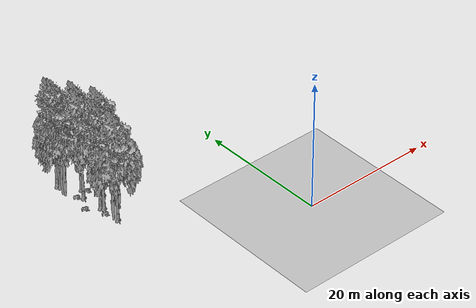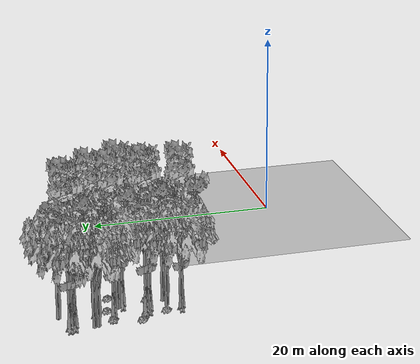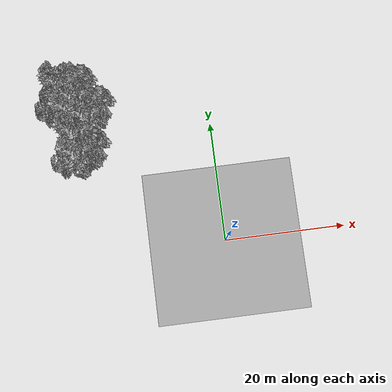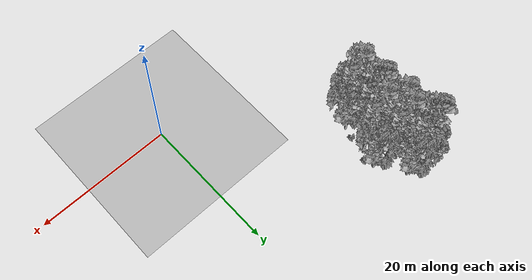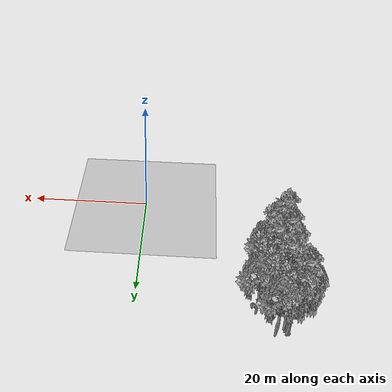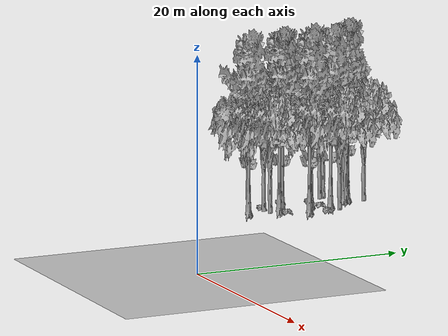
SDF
<sdf version="1.7">
 <world name="default">
  <model name="ground_plane">
   <static>1</static>
   <link name="link">
    <collision name="collision">
     <pose>-50 0 0 0 -0 0</pose>
     <geometry><plane><normal>0 0 1</normal><size>80 80</size></plane></geometry>
     <surface><contact><ode><min_depth>0.01</min_depth><max_vel>0</max_vel></ode></contact></surface>
    </collision>
    <visual name="grass">
     <cast_shadows>0</cast_shadows>
     <geometry>
      <mesh>
       <scale>0.46714285714285714 0.46714285714285714 0.1</scale>
       <uri>file://grass_plane/meshes/grass_plane.dae</uri>
      </mesh>
     </geometry>
    </visual>
   </link>
  </model>
  <model name="Tree 34">
   <static>1</static>
   <pose>-18.484954712036057 23.357658262304867 0 1.57079 -0 0</pose>
   <link name="link">
    <collision name="collision">
     <geometry><mesh><scale>3.5 5 3.5</scale><uri>model://tree_2/meshes/tree_2.obj</uri></mesh></geometry>
    </collision>
    <visual name="visual">
     <geometry><mesh><scale>3.5 5 3.5</scale><uri>model://tree_2/meshes/tree_2.obj</uri></mesh></geometry>
    </visual>
   </link>
  </model>
  <model name="Tree 43">
   <static>1</static>
   <pose>-19.904946813310186 16.7215869745757 0 1.57079 -0 0</pose>
   <link name="link">
    <collision name="collision">
     <geometry><mesh><scale>3.5 5 3.5</scale><uri>model://tree_2/meshes/tree_2.obj</uri></mesh></geometry>
    </collision>
    <visual name="visual">
     <geometry><mesh><scale>3.5 5 3.5</scale><uri>model://tree_2/meshes/tree_2.obj</uri></mesh></geometry>
    </visual>
   </link>
  </model>
  <model name="Tree 57">
   <static>1</static>
   <pose>-19.44848914499519 20.676733369066497 0 1.57079 -0 0</pose>
   <link name="link">
    <collision name="collision">
     <geometry><mesh><scale>3.5 5 3.5</scale><uri>model://tree_9/meshes/tree_9.obj</uri></mesh></geometry>
    </collision>
    <visual name="visual">
     <geometry><mesh><scale>3.5 5 3.5</scale><uri>model://tree_9/meshes/tree_9.obj</uri></mesh></geometry>
    </visual>
   </link>
  </model>
  <model name="Tree 71">
   <static>1</static>
   <pose>-22.917101464437437 26.415208543538 0 1.57079 -0 0</pose>
   <link name="link">
    <collision name="collision">
     <geometry><mesh><scale>3.5 5 3.5</scale><uri>model://tree_9/meshes/tree_9.obj</uri></mesh></geometry>
    </collision>
    <visual name="visual">
     <geometry><mesh><scale>3.5 5 3.5</scale><uri>model://tree_9/meshes/tree_9.obj</uri></mesh></geometry>
    </visual>
   </link>
  </model>
  <model name="Tree 88">
   <static>1</static>
   <pose>-21.916306055899604 15.358803301679472 0 1.57079 -0 0</pose>
   <link name="link">
    <collision name="collision">
     <geometry><mesh><scale>3.5 5 3.5</scale><uri>model://tree_2/meshes/tree_2.obj</uri></mesh></geometry>
    </collision>
    <visual name="visual">
     <geometry><mesh><scale>3.5 5 3.5</scale><uri>model://tree_2/meshes/tree_2.obj</uri></mesh></geometry>
    </visual>
   </link>
  </model>
  <model name="Tree 136">
   <static>1</static>
   <pose>-21.04842977844104 27.199263413137103 0 1.57079 -0 0</pose>
   <link name="link">
    <collision name="collision">
     <geometry><mesh><scale>3.5 5 3.5</scale><uri>model://tree_2/meshes/tree_2.obj</uri></mesh></geometry>
    </collision>
    <visual name="visual">
     <geometry><mesh><scale>3.5 5 3.5</scale><uri>model://tree_2/meshes/tree_2.obj</uri></mesh></geometry>
    </visual>
   </link>
  </model>
  <model name="Tree 141">
   <static>1</static>
   <pose>-21.30309613638284 15.156076284186781 0 1.57079 -0 0</pose>
   <link name="link">
    <collision name="collision">
     <geometry><mesh><scale>3.5 5 3.5</scale><uri>model://tree_9/meshes/tree_9.obj</uri></mesh></geometry>
    </collision>
    <visual name="visual">
     <geometry><mesh><scale>3.5 5 3.5</scale><uri>model://tree_9/meshes/tree_9.obj</uri></mesh></geometry>
    </visual>
   </link>
  </model>
  <model name="Tree 178">
   <static>1</static>
   <pose>-21.8112977496457 21.97600291827196 0 1.57079 -0 0</pose>
   <link name="link">
    <collision name="collision">
     <geometry><mesh><scale>3.5 5 3.5</scale><uri>model://tree_9/meshes/tree_9.obj</uri></mesh></geometry>
    </collision>
    <visual name="visual">
     <geometry><mesh><scale>3.5 5 3.5</scale><uri>model://tree_9/meshes/tree_9.obj</uri></mesh></geometry>
    </visual>
   </link>
  </model>
  <model name="Tree 193">
   <static>1</static>
   <pose>-20.96615501014269 16.559402719071734 0 1.57079 -0 0</pose>
   <link name="link">
    <collision name="collision">
     <geometry><mesh><scale>3.5 5 3.5</scale><uri>model://tree_2/meshes/tree_2.obj</uri></mesh></geometry>
    </collision>
    <visual name="visual">
     <geometry><mesh><scale>3.5 5 3.5</scale><uri>model://tree_2/meshes/tree_2.obj</uri></mesh></geometry>
    </visual>
   </link>
  </model>
  <model name="Tree 229">
   <static>1</static>
   <pose>-22.72509758788802 25.911894374937745 0 1.57079 -0 0</pose>
   <link name="link">
    <collision name="collision">
     <geometry><mesh><scale>3.5 5 3.5</scale><uri>model://tree_9/meshes/tree_9.obj</uri></mesh></geometry>
    </collision>
    <visual name="visual">
     <geometry><mesh><scale>3.5 5 3.5</scale><uri>model://tree_9/meshes/tree_9.obj</uri></mesh></geometry>
    </visual>
   </link>
  </model>
  <model name="Tree 279">
   <static>1</static>
   <pose>-20.898658809652392 23.623429129732443 0 1.57079 -0 0</pose>
   <link name="link">
    <collision name="collision">
     <geometry><mesh><scale>3.5 5 3.5</scale><uri>model://tree_9/meshes/tree_9.obj</uri></mesh></geometry>
    </collision>
    <visual name="visual">
     <geometry><mesh><scale>3.5 5 3.5</scale><uri>model://tree_9/meshes/tree_9.obj</uri></mesh></geometry>
    </visual>
   </link>
  </model>
  <model name="Tree 336">
   <static>1</static>
   <pose>-21.175299973534955 18.33354140923204 0 1.57079 -0 0</pose>
   <link name="link">
    <collision name="collision">
     <geometry><mesh><scale>3.5 5 3.5</scale><uri>model://tree_9/meshes/tree_9.obj</uri></mesh></geometry>
    </collision>
    <visual name="visual">
     <geometry><mesh><scale>3.5 5 3.5</scale><uri>model://tree_9/meshes/tree_9.obj</uri></mesh></geometry>
    </visual>
   </link>
  </model>
  <model name="Tree 344">
   <static>1</static>
   <pose>-22.82499314720222 26.026733273029535 0 1.57079 -0 0</pose>
   <link name="link">
    <collision name="collision">
     <geometry><mesh><scale>3.5 5 3.5</scale><uri>model://tree_2/meshes/tree_2.obj</uri></mesh></geometry>
    </collision>
    <visual name="visual">
     <geometry><mesh><scale>3.5 5 3.5</scale><uri>model://tree_2/meshes/tree_2.obj</uri></mesh></geometry>
    </visual>
   </link>
  </model>
  <model name="Tree 347">
   <static>1</static>
   <pose>-22.38846666428891 25.978630631842393 0 1.57079 -0 0</pose>
   <link name="link">
    <collision name="collision">
     <geometry><mesh><scale>3.5 5 3.5</scale><uri>model://tree_2/meshes/tree_2.obj</uri></mesh></geometry>
    </collision>
    <visual name="visual">
     <geometry><mesh><scale>3.5 5 3.5</scale><uri>model://tree_2/meshes/tree_2.obj</uri></mesh></geometry>
    </visual>
   </link>
  </model>
  <model name="Tree 409">
   <static>1</static>
   <pose>-21.422816124587527 18.75315801053273 0 1.57079 -0 0</pose>
   <link name="link">
    <collision name="collision">
     <geometry><mesh><scale>3.5 5 3.5</scale><uri>model://tree_9/meshes/tree_9.obj</uri></mesh></geometry>
    </collision>
    <visual name="visual">
     <geometry><mesh><scale>3.5 5 3.5</scale><uri>model://tree_9/meshes/tree_9.obj</uri></mesh></geometry>
    </visual>
   </link>
  </model>
  <model name="Tree 442">
   <static>1</static>
   <pose>-20.383084959976514 21.272068546421686 0 1.57079 -0 0</pose>
   <link name="link">
    <collision name="collision">
     <geometry><mesh><scale>3.5 5 3.5</scale><uri>model://tree_2/meshes/tree_2.obj</uri></mesh></geometry>
    </collision>
    <visual name="visual">
     <geometry><mesh><scale>3.5 5 3.5</scale><uri>model://tree_2/meshes/tree_2.obj</uri></mesh></geometry>
    </visual>
   </link>
  </model>
  <model name="Tree 529">
   <static>1</static>
   <pose>-23.686913641642082 24.168111799077565 0 1.57079 -0 0</pose>
   <link name="link">
    <collision name="collision">
     <geometry><mesh><scale>3.5 5 3.5</scale><uri>model://tree_2/meshes/tree_2.obj</uri></mesh></geometry>
    </collision>
    <visual name="visual">
     <geometry><mesh><scale>3.5 5 3.5</scale><uri>model://tree_2/meshes/tree_2.obj</uri></mesh></geometry>
    </visual>
   </link>
  </model>
  <model name="Tree 536">
   <static>1</static>
   <pose>-23.600537206374128 23.75976258139267 0 1.57079 -0 0</pose>
   <link name="link">
    <collision name="collision">
     <geometry><mesh><scale>3.5 5 3.5</scale><uri>model://tree_2/meshes/tree_2.obj</uri></mesh></geometry>
    </collision>
    <visual name="visual">
     <geometry><mesh><scale>3.5 5 3.5</scale><uri>model://tree_2/meshes/tree_2.obj</uri></mesh></geometry>
    </visual>
   </link>
  </model>
  <model name="Bush 221">
   <static>1</static>
   <pose>-19.429527925337695 18.29367054700007 0 1.57079 -0 0</pose>
   <link name="link">
    <collision name="collision">
     <geometry><mesh><scale>2 2 2</scale><uri>model://bush_2/meshes/bush_2.obj</uri></mesh></geometry>
     <surface><contact><collide_without_contact>false</collide_without_contact></contact></surface>
    </collision>
    <visual name="visual">
     <geometry><mesh><scale>2 2 2</scale><uri>model://bush_2/meshes/bush_2.obj</uri></mesh></geometry>
    </visual>
   </link>
  </model>
  <model name="Bush 244">
   <static>1</static>
   <pose>-20.798084699904603 22.463361511692746 0 1.57079 -0 0</pose>
   <link name="link">
    <collision name="collision">
     <geometry><mesh><scale>2 2 2</scale><uri>model://bush_2/meshes/bush_2.obj</uri></mesh></geometry>
     <surface><contact><collide_without_contact>false</collide_without_contact></contact></surface>
    </collision>
    <visual name="visual">
     <geometry><mesh><scale>2 2 2</scale><uri>model://bush_2/meshes/bush_2.obj</uri></mesh></geometry>
    </visual>
   </link>
  </model>
  <model name="Bush 255">
   <static>1</static>
   <pose>-18.186139313448585 21.945528230012755 0 1.57079 -0 0</pose>
   <link name="link">
    <collision name="collision">
     <geometry><mesh><scale>2 2 2</scale><uri>model://bush_2/meshes/bush_2.obj</uri></mesh></geometry>
     <surface><contact><collide_without_contact>false</collide_without_contact></contact></surface>
    </collision>
    <visual name="visual">
     <geometry><mesh><scale>2 2 2</scale><uri>model://bush_2/meshes/bush_2.obj</uri></mesh></geometry>
    </visual>
   </link>
  </model>
  <model name="Bush 265">
   <static>1</static>
   <pose>-23.47020963081956 19.478859862465477 0 1.57079 -0 0</pose>
   <link name="link">
    <collision name="collision">
     <geometry><mesh><scale>2 2 2</scale><uri>model://bush_2/meshes/bush_2.obj</uri></mesh></geometry>
     <surface><contact><collide_without_contact>false</collide_without_contact></contact></surface>
    </collision>
    <visual name="visual">
     <geometry><mesh><scale>2 2 2</scale><uri>model://bush_2/meshes/bush_2.obj</uri></mesh></geometry>
    </visual>
   </link>
  </model>
  <model name="Bush 380">
   <static>1</static>
   <pose>-22.75970899588887 22.207544992162212 0 1.57079 -0 0</pose>
   <link name="link">
    <collision name="collision">
     <geometry><mesh><scale>2 2 2</scale><uri>model://bush_2/meshes/bush_2.obj</uri></mesh></geometry>
     <surface><contact><collide_without_contact>false</collide_without_contact></contact></surface>
    </collision>
    <visual name="visual">
     <geometry><mesh><scale>2 2 2</scale><uri>model://bush_2/meshes/bush_2.obj</uri></mesh></geometry>
    </visual>
   </link>
  </model>
  <model name="Bush 620">
   <static>1</static>
   <pose>-22.092461102856838 16.837702382834948 0 1.57079 -0 0</pose>
   <link name="link">
    <collision name="collision">
     <geometry><mesh><scale>2 2 2</scale><uri>model://bush_2/meshes/bush_2.obj</uri></mesh></geometry>
     <surface><contact><collide_without_contact>false</collide_without_contact></contact></surface>
    </collision>
    <visual name="visual">
     <geometry><mesh><scale>2 2 2</scale><uri>model://bush_2/meshes/bush_2.obj</uri></mesh></geometry>
    </visual>
   </link>
  </model>
 </world>
</sdf>
